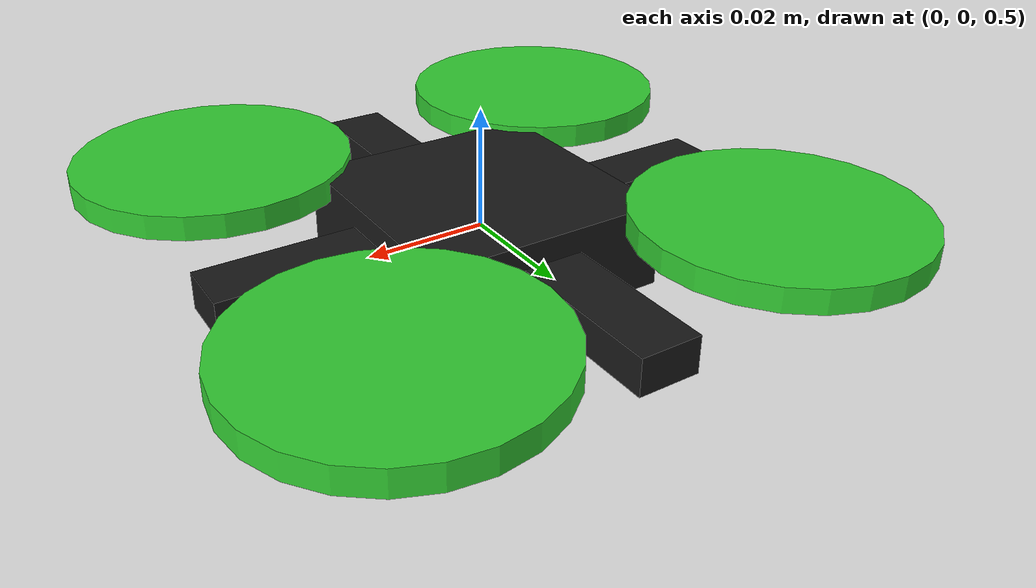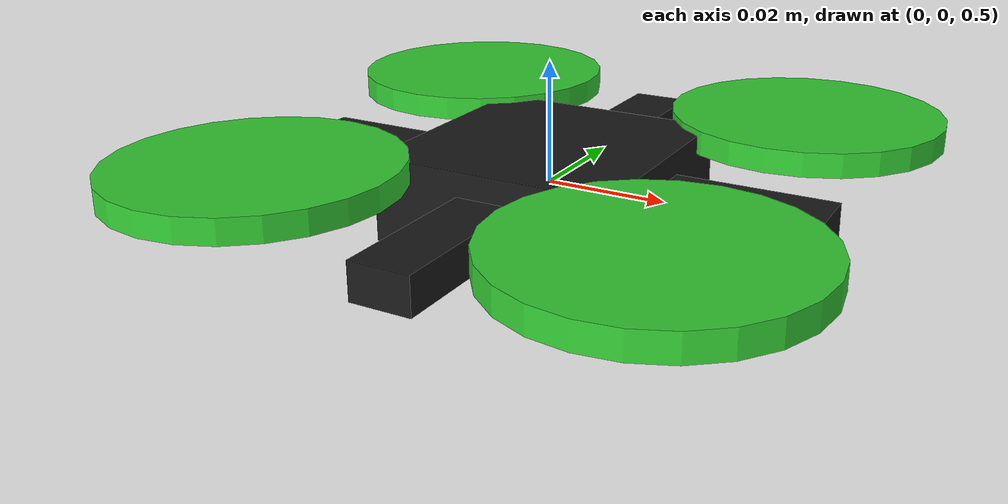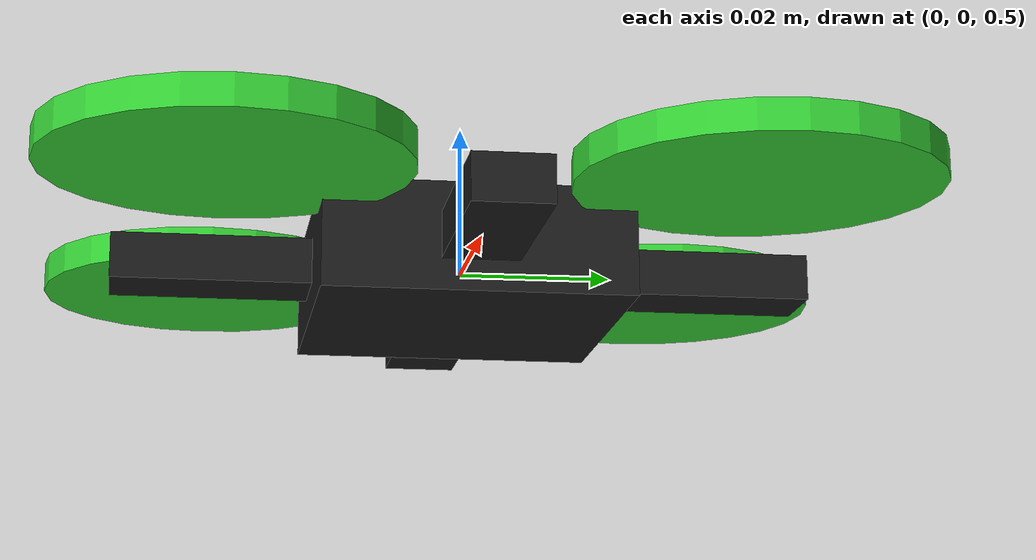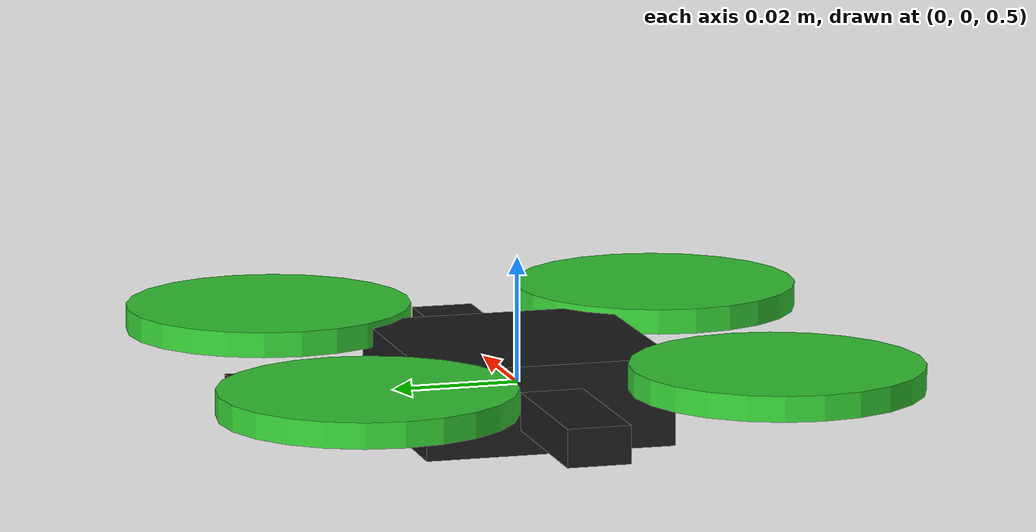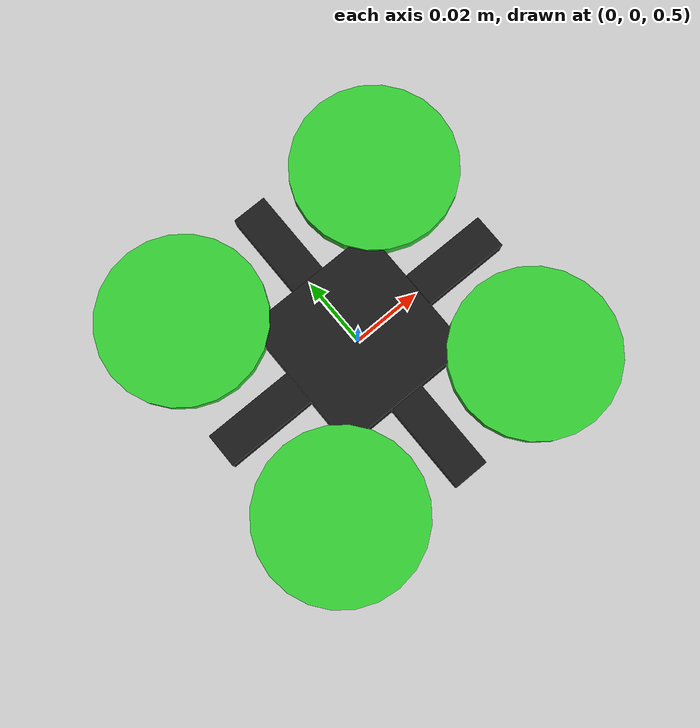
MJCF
<mujoco model="MuJoCo : Drone scene">
  <option integrator="RK4" gravity="0 0 -9.81" timestep="0.002"/>

  <visual>
    <!-- Ambient fill keeps the scene bright from all directions.
         haze tints the far-field fog to match the dark-blue sky. -->
    <headlight diffuse="0.70 0.70 0.75" ambient="0.50 0.50 0.55" specular="0 0 0"/>
    <rgba haze="0.10 0.18 0.32 1"/>
  </visual>

  <asset>
    <!-- Sky: dark-blue gradient (top → bottom). No bright skybox —
         matches the flat dark-blue background in the reference. -->
    <texture type="skybox" builtin="gradient"
             rgb1="0.18 0.30 0.48" rgb2="0.06 0.12 0.22"
             width="512" height="512"/>

    <!-- Ground: two-tone teal/blue checkerboard with bright edge markings.
         texrepeat="1 1" + texuniform="true" → each checker square ≈ 0.5 m. -->
    <texture type="2d" name="ground" builtin="checker"
             rgb1="0.27 0.50 0.70" rgb2="0.18 0.36 0.56"
             markrgb="0.82 0.90 0.97" mark="edge"
             width="512" height="512"/>
    <material name="ground" texture="ground" texuniform="true"
              texrepeat="1 1" reflectance="0.08"/>

    <!-- Drone materials — unchanged from original -->
    <material name="frame"      rgba="0.10 0.10 0.10 1"/>
    <material name="prop"       rgba="0.75 0.80 0.92 1"/>
    <material name="motor_ok"   rgba="0.20 0.80 0.20 1"/>
    <material name="motor_fail" rgba="0.90 0.10 0.10 1"/>
  </asset>

  <worldbody>
    <!-- Ambient fill: overhead, no shadow, keeps underside of drone visible -->
    <light name="fill" pos="0 0 4" dir="0 0 -1" directional="true"
           diffuse="0.40 0.40 0.45" specular="0 0 0" castshadow="false"/>
    <!-- Sun: angled from front-right, casts a soft shadow under the drone -->
    <light name="sun" pos="3 -2 5" dir="-0.45 0.30 -0.84" directional="true"
           diffuse="0.60 0.60 0.65" specular="0.08 0.08 0.08" castshadow="true"/>
    <geom name="floor" type="plane" size="0 0 0.05" material="ground"/>

    <body name="cf2" pos="0 0 0.5" euler="0 0 0">
      <freejoint name="root"/>
      <inertial pos="0 0 0" mass="0.027"
                diaginertia="2.3951e-5 2.3951e-5 3.2347e-5"/>

      <!-- Camera for tracking -->
      <camera name="track" pos="-1.2 0 0.6" xyaxes="0 -1 0 1 0 2"
              mode="trackcom"/>
      <camera name="top" pos="0 0 2.5" xyaxes="1 0 0 0 1 0" mode="trackcom"/>

      <!-- Main frame cross (schematic) -->
      <geom name="arm_fw" type="box"
            pos="0 0 0" size="0.046 0.005 0.003" material="frame"/>
      <geom name="arm_lat" type="box"
            pos="0 0 0" size="0.005 0.046 0.003" material="frame"/>
      <geom name="body_pcb" type="box"
            pos="0 0 0" size="0.020 0.020 0.007" material="frame"/>

      <!-- Props (cylinders at motor positions, coloured by health) -->
      <geom name="prop1" type="cylinder"
            pos=" 0.0325  0.0325 0.006" size="0.023 0.002" material="motor_ok"/>
      <geom name="prop2" type="cylinder"
            pos="-0.0325  0.0325 0.006" size="0.023 0.002" material="motor_ok"/>
      <geom name="prop3" type="cylinder"
            pos="-0.0325 -0.0325 0.006" size="0.023 0.002" material="motor_ok"/>
      <geom name="prop4" type="cylinder"
            pos=" 0.0325 -0.0325 0.006" size="0.023 0.002" material="motor_ok"/>

      <!-- IMU site at centre of mass -->
      <site name="imu" pos="0 0 0" size="0.005"/>
    </body>
  </worldbody>

  <sensor>
    <gyro         name="body_gyro"  site="imu"/>
    <accelerometer name="body_linacc" site="imu"/>
    <framequat    name="body_quat"  objtype="site" objname="imu"/>
    <framepos     name="body_pos"   objtype="site" objname="imu"/>
    <framelinvel  name="body_linvel" objtype="site" objname="imu"/>
  </sensor>
</mujoco>
